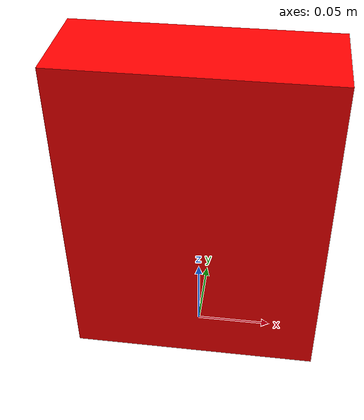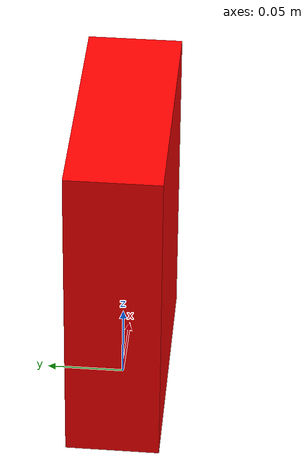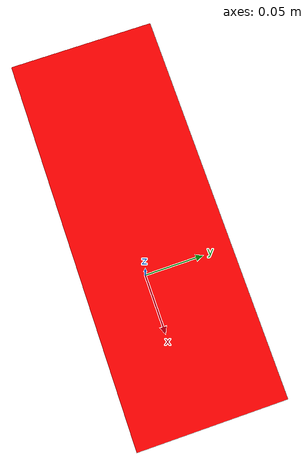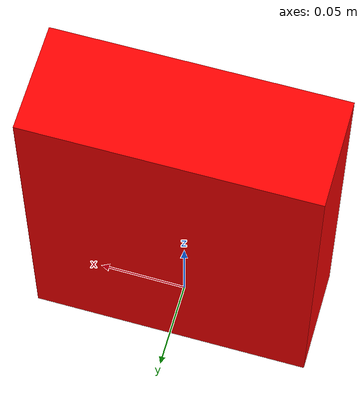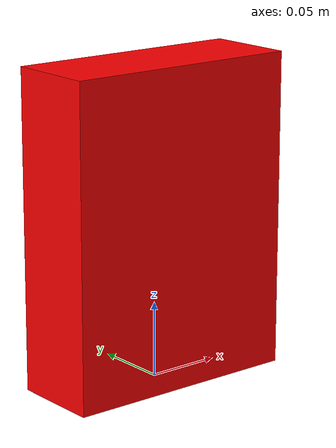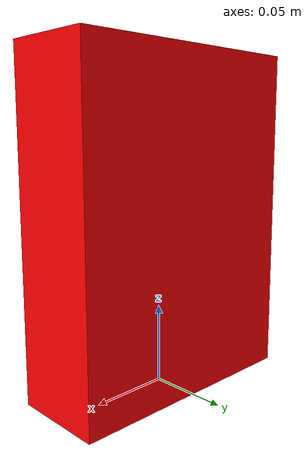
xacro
<?xml version="1.0"?>
<robot name="cracker_box" xmlns:xacro="http://www.ros.org/wiki/xacro">

  <xacro:property name="length" value="0.16" />
  <xacro:property name="width" value="0.06" />
  <xacro:property name="height" value="0.21" />
  <xacro:property name="M" value="0.001" />

  <link name="cracker_box_base_link"/>

  <link name="cracker_box_link">
    <inertial>
      <origin xyz="0 0 0" rpy="0 0 0"/>
      <mass value="${M}"/>
      <inertia ixx="${1/12*M*(length**2+width**2)}"  ixy="0"  ixz="0" iyy="${1/12*M*(length**2+height**2)}" iyz="0" izz="${1/12*M*(width**2+height**2)}" />
    </inertial>

    <visual>
      <geometry>
        <box size="${length} ${width} ${height}" />
      </geometry>
      <material name="red">
        <color rgba="1 0 0 1"/>
      </material>
    </visual>

   <collision>
     <origin xyz="0 0 0" rpy="0 0 0"/>
     <geometry>
       <box size="${length} ${width} ${height}" />
     </geometry>
   </collision>
  </link>

  <joint name="base_to_box" type="fixed">
   <parent link="cracker_box_base_link" />
   <child link="cracker_box_link" />
   <origin xyz="0 0 ${height/2.0}" rpy="0 0 0" />
  </joint>

  <gazebo reference="cracker_box_link">
    <material>Gazebo/Red</material>
    <kp>1000000.0</kp>
    <kd>100.0</kd>
    <mu1>100.0</mu1>
    <mu2>100.0</mu2>
    <maxVel>1.0</maxVel>
    <minDepth>0.001</minDepth>
  </gazebo>

</robot>
